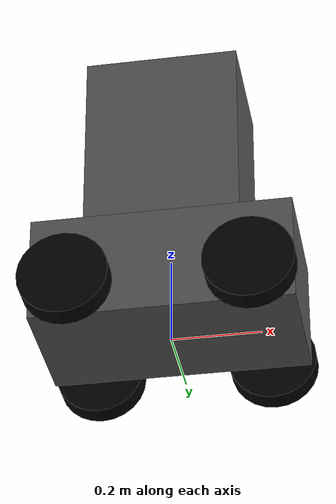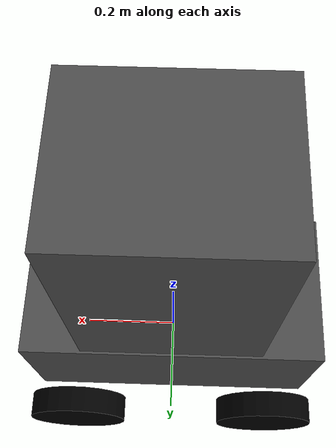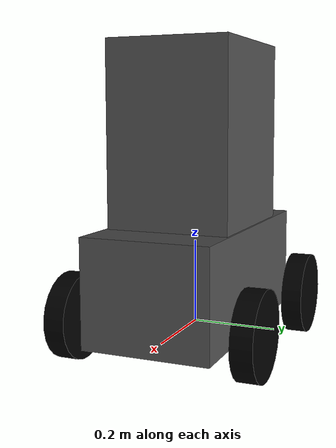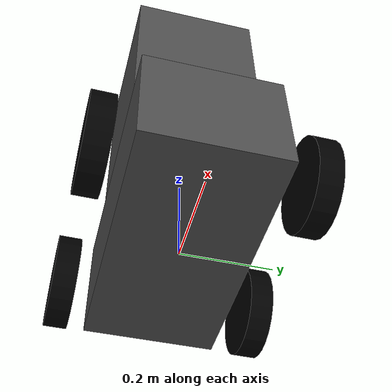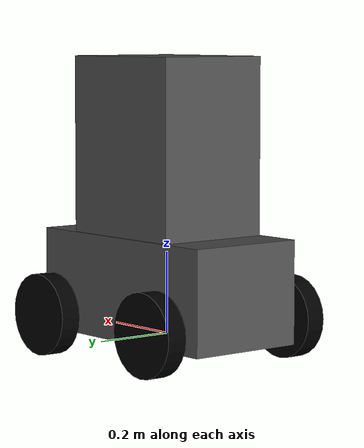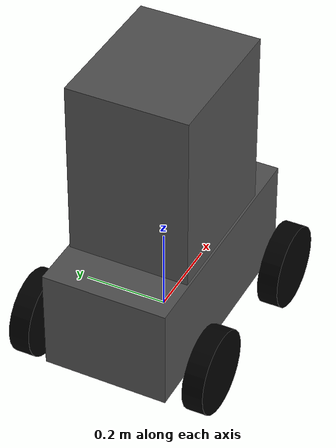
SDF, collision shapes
<sdf version='1.9'>
  <model name='ebot'>
    <link name='ebot_base_link'>
      <inertial>
        <pose>0 0 0.12 0 0 0</pose>
        <mass>46.033999999999999</mass>
        <inertia>
          <ixx>0.58501541666666657</ixx>
          <ixy>0</ixy>
          <ixz>0</ixz>
          <iyy>1.5525925541666661</iyy>
          <iyz>0</iyz>
          <izz>1.6580871374999999</izz>
        </inertia>
      </inertial>
      <collision name='ebot_base_link_fixed_joint_lump__ebot_base_collision'>
        <pose>0 0 0.12 0 0 0</pose>
        <geometry>
          <box>
            <size>0.585 0.3 0.25</size>
          </box>
        </geometry>
      </collision>
      <collision name='ebot_base_link_fixed_joint_lump__ebot_base_collision_1'>
        <pose>0 0 0.457521 0 0 0</pose>
        <geometry>
          <box>
            <size>0.35 0.29 0.435</size>
          </box>
        </geometry>
      </collision>
      <visual name='ebot_base_link_fixed_joint_lump__ebot_base_visual'>
        <pose>0 0 0 0 0 0</pose>
        <geometry>
          <mesh>
            <scale>1 1 1</scale>
            <uri>file:///home/joel/kc25_ws/dev-sim_ws/install/ebot_description/share/ebot_description/meshes/chassis_modified.dae</uri>
          </mesh>
        </geometry>
      </visual>
      <visual name='ebot_base_link_fixed_joint_lump__FUS1_visual_1'>
        <pose>0.297825909825268 -0.157279305693451 0.0977263808983278 -1.5707963267949 0 0.006797068273444629</pose>
        <geometry>
          <mesh>
            <scale>1 1 1</scale>
            <uri>file:///home/joel/kc25_ws/dev-sim_ws/install/ebot_description/share/ebot_description/meshes/FUS1.STL</uri>
          </mesh>
        </geometry>
        <material>
          <diffuse>0.313726 0.313726 0.313726 1</diffuse>
          <ambient>0.313726 0.313726 0.313726 1</ambient>
        </material>
      </visual>
      <visual name='ebot_base_link_fixed_joint_lump__FUS2_visual_2'>
        <pose>0.295786805044471 0.142713764312663 0.09772638089832859 -1.5707963267949 0 0.006797068273444629</pose>
        <geometry>
          <mesh>
            <scale>1 1 1</scale>
            <uri>file:///home/joel/kc25_ws/dev-sim_ws/install/ebot_description/share/ebot_description/meshes/FUS2.STL</uri>
          </mesh>
        </geometry>
        <material>
          <diffuse>0.313725 0.313725 0.313725 1</diffuse>
          <ambient>0.313725 0.313725 0.313725 1</ambient>
        </material>
      </visual>
      <visual name='ebot_base_link_fixed_joint_lump__FUS3_visual_3'>
        <pose>0.27274874909921 -0.0749478536996718 0.0424745013517897 0 0.7853981633974491 0.00679706827344116</pose>
        <geometry>
          <mesh>
            <scale>1 1 1</scale>
            <uri>file:///home/joel/kc25_ws/dev-sim_ws/install/ebot_description/share/ebot_description/meshes/FUS3.STL</uri>
          </mesh>
        </geometry>
        <material>
          <diffuse>0.313725 0.313725 0.313725 1</diffuse>
          <ambient>0.313725 0.313725 0.313725 1</ambient>
        </material>
      </visual>
      <visual name='ebot_base_link_fixed_joint_lump__FUS4_visual_4'>
        <pose>0.271702008645067 0.0790485889034664 0.0424745013517894 0 0.7853981633974491 0.00679706827344116</pose>
        <geometry>
          <mesh>
            <scale>1 1 1</scale>
            <uri>file:///home/joel/kc25_ws/dev-sim_ws/install/ebot_description/share/ebot_description/meshes/FUS4.STL</uri>
          </mesh>
        </geometry>
        <material>
          <diffuse>0.313726 0.313726 0.313726 1</diffuse>
          <ambient>0.313726 0.313726 0.313726 1</ambient>
        </material>
      </visual>
      <visual name='ebot_base_link_fixed_joint_lump__LHUS10_visual_5'>
        <pose>0.14045985551618 0.10004021562239 0.196076309026377 0.001868830766043012 0.123098458475999 0.7998493484503931</pose>
        <geometry>
          <mesh>
            <scale>1 1 1</scale>
            <uri>file:///home/joel/kc25_ws/dev-sim_ws/install/ebot_description/share/ebot_description/meshes/LHUS10.STL</uri>
          </mesh>
        </geometry>
        <material>
          <diffuse>0.313725 0.313725 0.313725 1</diffuse>
          <ambient>0.313725 0.313725 0.313725 1</ambient>
        </material>
      </visual>
      <visual name='ebot_base_link_fixed_joint_lump__LHUS9_visual_6'>
        <pose>-0.180600634182961 0.14597582665002 0.189449821416576 0 0 1.57759339506834</pose>
        <geometry>
          <mesh>
            <scale>1 1 1</scale>
            <uri>file:///home/joel/kc25_ws/dev-sim_ws/install/ebot_description/share/ebot_description/meshes/LHUS9.STL</uri>
          </mesh>
        </geometry>
        <material>
          <diffuse>0.313726 0.313726 0.313726 1</diffuse>
          <ambient>0.313726 0.313726 0.313726 1</ambient>
        </material>
      </visual>
      <visual name='ebot_base_link_fixed_joint_lump__RHUS7_visual_7'>
        <pose>-0.17860231149778 -0.148017381955971 0.189449821416576 0 0 -1.56399925852145</pose>
        <geometry>
          <mesh>
            <scale>1 1 1</scale>
            <uri>file:///home/joel/kc25_ws/dev-sim_ws/install/ebot_description/share/ebot_description/meshes/RHUS7.STL</uri>
          </mesh>
        </geometry>
        <material>
          <diffuse>0.313726 0.313726 0.313726 1</diffuse>
          <ambient>0.313726 0.313726 0.313726 1</ambient>
        </material>
      </visual>
      <visual name='ebot_base_link_fixed_joint_lump__RHUS9_visual_8'>
        <pose>0.141804076845343 -0.09772160961624141 0.196076309026378 -0.001868830766054911 0.123098458475999 -0.7862552119035011</pose>
        <geometry>
          <mesh>
            <scale>1 1 1</scale>
            <uri>file:///home/joel/kc25_ws/dev-sim_ws/install/ebot_description/share/ebot_description/meshes/RHUS9.STL</uri>
          </mesh>
        </geometry>
        <material>
          <diffuse>0.313725 0.313725 0.313725 1</diffuse>
          <ambient>0.313725 0.313725 0.313725 1</ambient>
        </material>
      </visual>
      <visual name='ebot_base_link_fixed_joint_lump__ultrasonic_rl_visual_9'>
        <pose>-0.29532868617037 0.157696288994793 0.09770294372515149 -1.5707963267949 0 -3.13479558531634</pose>
        <geometry>
          <mesh>
            <scale>1 1 1</scale>
            <uri>file:///home/joel/kc25_ws/dev-sim_ws/install/ebot_description/share/ebot_description/meshes/RUS5.STL</uri>
          </mesh>
        </geometry>
        <material>
          <diffuse>0.313725 0.313725 0.313725 1</diffuse>
          <ambient>0.313725 0.313725 0.313725 1</ambient>
        </material>
      </visual>
      <visual name='ebot_base_link_fixed_joint_lump__ultrasonic_rr_visual_10'>
        <pose>-0.293289581389573 -0.14229678101132 0.0977029437251508 -1.5707963267949 0 -3.13479558531634</pose>
        <geometry>
          <mesh>
            <scale>1 1 1</scale>
            <uri>file:///home/joel/kc25_ws/dev-sim_ws/install/ebot_description/share/ebot_description/meshes/RUS6.STL</uri>
          </mesh>
        </geometry>
        <material>
          <diffuse>0.313726 0.313726 0.313726 1</diffuse>
          <ambient>0.313726 0.313726 0.313726 1</ambient>
        </material>
      </visual>
      <visual name='ebot_base_link_fixed_joint_lump__imu_link_visual_11'>
        <pose>0 0 0.2 0 0 0</pose>
        <geometry>
          <box>
            <size>0.02 0.015 0.008</size>
          </box>
        </geometry>
      </visual>
      <visual name='ebot_base_link_fixed_joint_lump__laser_visual_12'>
        <pose>0.255540836099039 0 0.18 0 0 0.00679706827344463</pose>
        <geometry>
          <cylinder>
            <length>0.040000000000000001</length>
            <radius>0.029999999999999999</radius>
          </cylinder>
        </geometry>
      </visual>
    </link>
    <joint name='FWLJ' type='revolute'>
      <pose relative_to='ebot_base_link'>0.199948480594093 0.192163491981716 0.0450000000000047 0 0 0.00679706827344463</pose>
      <parent>ebot_base_link</parent>
      <child>FWL</child>
      <axis>
        <xyz>0 1 0</xyz>
        <limit>
          <lower>-10000000000000000</lower>
          <upper>10000000000000000</upper>
        </limit>
        <dynamics>
          <spring_reference>0</spring_reference>
          <spring_stiffness>0</spring_stiffness>
        </dynamics>
      </axis>
    </joint>
    <link name='FWL'>
      <pose relative_to='FWLJ'>0 0 0 0 0 0</pose>
      <inertial>
        <pose>6.659400000000001e-05 0.025016 -1.349e-06 0 0 0</pose>
        <mass>2.637</mass>
        <inertia>
          <ixx>0.0071418750000000024</ixx>
          <ixy>0</ixy>
          <ixz>0</ixz>
          <iyy>0.013185000000000001</iyy>
          <iyz>0</iyz>
          <izz>0.0071418750000000024</izz>
        </inertia>
      </inertial>
      <collision name='FWL_collision'>
        <pose>0 0.025 0 0 1.570796326794897 -1.570796326794897</pose>
        <geometry>
          <cylinder>
            <length>0.050000000000000003</length>
            <radius>0.10000000000000001</radius>
          </cylinder>
        </geometry>
      </collision>
      <visual name='FWL_visual'>
        <pose>0 0 0 0 0 0</pose>
        <geometry>
          <mesh>
            <scale>1 1 1</scale>
            <uri>file:///home/joel/kc25_ws/dev-sim_ws/install/ebot_description/share/ebot_description/meshes/FWL.STL</uri>
          </mesh>
        </geometry>
        <material>
          <diffuse>0 0 0 1</diffuse>
          <ambient>0 0 0 1</ambient>
        </material>
      </visual>
    </link>
    <joint name='FWRJ' type='revolute'>
      <pose relative_to='ebot_base_link'>0.202539503068943 -0.189027702306049 0.0449999999999943 -3.14159265358979 0.9110963622385631 0.006797068273438887</pose>
      <parent>ebot_base_link</parent>
      <child>FWR</child>
      <axis>
        <xyz>0 -1 0</xyz>
        <limit>
          <lower>-10000000000000000</lower>
          <upper>10000000000000000</upper>
        </limit>
        <dynamics>
          <spring_reference>0</spring_reference>
          <spring_stiffness>0</spring_stiffness>
        </dynamics>
      </axis>
    </joint>
    <link name='FWR'>
      <pose relative_to='FWRJ'>0 0 0 0 0 0</pose>
      <inertial>
        <pose>6.6592e-05 0.025016 -1.3483e-06 0 0 0</pose>
        <mass>2.637</mass>
        <inertia>
          <ixx>0.0071418750000000024</ixx>
          <ixy>0</ixy>
          <ixz>0</ixz>
          <iyy>0.013185000000000001</iyy>
          <iyz>0</iyz>
          <izz>0.0071418750000000024</izz>
        </inertia>
      </inertial>
      <collision name='FWR_collision'>
        <pose>0 0.025 0 0 1.570796326794897 -1.570796326794897</pose>
        <geometry>
          <cylinder>
            <length>0.050000000000000003</length>
            <radius>0.10000000000000001</radius>
          </cylinder>
        </geometry>
      </collision>
      <visual name='FWR_visual'>
        <pose>0 0 0 0 0 0</pose>
        <geometry>
          <mesh>
            <scale>1 1 1</scale>
            <uri>file:///home/joel/kc25_ws/dev-sim_ws/install/ebot_description/share/ebot_description/meshes/FWR.STL</uri>
          </mesh>
        </geometry>
        <material>
          <diffuse>0 0 0 1</diffuse>
          <ambient>0 0 0 1</ambient>
        </material>
      </visual>
    </link>
    <joint name='RWLJ' type='revolute'>
      <pose relative_to='ebot_base_link'>-0.200042279414009 0.189444685607321 0.0449999999999969 0 0 0.00679706827344463</pose>
      <parent>ebot_base_link</parent>
      <child>RWL</child>
      <axis>
        <xyz>0 1 0</xyz>
        <limit>
          <lower>-10000000000000000</lower>
          <upper>10000000000000000</upper>
        </limit>
        <dynamics>
          <spring_reference>0</spring_reference>
          <spring_stiffness>0</spring_stiffness>
        </dynamics>
      </axis>
    </joint>
    <link name='RWL'>
      <pose relative_to='RWLJ'>0 0 0 0 0 0</pose>
      <inertial>
        <pose>6.659400000000001e-05 0.025016 -1.349e-06 0 0 0</pose>
        <mass>2.637</mass>
        <inertia>
          <ixx>0.0071418750000000024</ixx>
          <ixy>0</ixy>
          <ixz>0</ixz>
          <iyy>0.013185000000000001</iyy>
          <iyz>0</iyz>
          <izz>0.0071418750000000024</izz>
        </inertia>
      </inertial>
      <collision name='RWL_collision'>
        <pose>0 0.025 0 0 1.570796326794897 -1.570796326794897</pose>
        <geometry>
          <cylinder>
            <length>0.050000000000000003</length>
            <radius>0.10000000000000001</radius>
          </cylinder>
        </geometry>
      </collision>
      <visual name='RWL_visual'>
        <pose>0 0 0 0 0 0</pose>
        <geometry>
          <mesh>
            <scale>1 1 1</scale>
            <uri>file:///home/joel/kc25_ws/dev-sim_ws/install/ebot_description/share/ebot_description/meshes/RWL.STL</uri>
          </mesh>
        </geometry>
        <material>
          <diffuse>0 0 0 1</diffuse>
          <ambient>0 0 0 1</ambient>
        </material>
      </visual>
    </link>
    <joint name='RWRJ' type='revolute'>
      <pose relative_to='ebot_base_link'>-0.197451256939211 -0.191746508680447 0.044999999999993 -3.14159265358979 0.5449120844099211 0.00679706827344312</pose>
      <parent>ebot_base_link</parent>
      <child>RWR</child>
      <axis>
        <xyz>0 -1 0</xyz>
        <limit>
          <lower>-10000000000000000</lower>
          <upper>10000000000000000</upper>
        </limit>
        <dynamics>
          <spring_reference>0</spring_reference>
          <spring_stiffness>0</spring_stiffness>
        </dynamics>
      </axis>
    </joint>
    <link name='RWR'>
      <pose relative_to='RWRJ'>0 0 0 0 0 0</pose>
      <inertial>
        <pose>6.6592e-05 0.025016 -1.3483e-06 0 0 0</pose>
        <mass>2.637</mass>
        <inertia>
          <ixx>0.0071418750000000024</ixx>
          <ixy>0</ixy>
          <ixz>0</ixz>
          <iyy>0.013185000000000001</iyy>
          <iyz>0</iyz>
          <izz>0.0071418750000000024</izz>
        </inertia>
      </inertial>
      <collision name='RWR_collision'>
        <pose>0 0.025 0 0 1.570796326794897 -1.570796326794897</pose>
        <geometry>
          <cylinder>
            <length>0.050000000000000003</length>
            <radius>0.10000000000000001</radius>
          </cylinder>
        </geometry>
      </collision>
      <visual name='RWR_visual'>
        <pose>0 0 0 0 0 0</pose>
        <geometry>
          <mesh>
            <scale>1 1 1</scale>
            <uri>file:///home/joel/kc25_ws/dev-sim_ws/install/ebot_description/share/ebot_description/meshes/RWR.STL</uri>
          </mesh>
        </geometry>
        <material>
          <diffuse>0 0 0 1</diffuse>
          <ambient>0 0 0 1</ambient>
        </material>
      </visual>
    </link>
    <frame name='base_footprint_joint' attached_to='ebot_base_link'>
      <pose>0 0 0 0 -0 0</pose>
    </frame>
    <frame name='base_footprint' attached_to='base_footprint_joint'/>
    <frame name='FUS1J' attached_to='ebot_base'>
      <pose>0.297826 -0.157279 0.097726 -1.5708 -0 0.006797</pose>
    </frame>
    <frame name='FUS1' attached_to='FUS1J'/>
    <frame name='FUS2J' attached_to='ebot_base'>
      <pose>0.295787 0.142714 0.097726 -1.5708 -0 0.006797</pose>
    </frame>
    <frame name='FUS2' attached_to='FUS2J'/>
    <frame name='FUS3J' attached_to='ebot_base'>
      <pose>0.272749 -0.074948 0.042475 0 0.785398 0.006797</pose>
    </frame>
    <frame name='FUS3' attached_to='FUS3J'/>
    <frame name='FUS4J' attached_to='ebot_base'>
      <pose>0.271702 0.079049 0.042475 0 0.785398 0.006797</pose>
    </frame>
    <frame name='FUS4' attached_to='FUS4J'/>
    <frame name='LHUS10J' attached_to='ebot_base'>
      <pose>0.14046 0.10004 0.196076 0.001869 0.123098 0.799849</pose>
    </frame>
    <frame name='LHUS10' attached_to='LHUS10J'/>
    <frame name='LHUS9J' attached_to='ebot_base'>
      <pose>-0.180601 0.145976 0.18945 0 -0 1.57759</pose>
    </frame>
    <frame name='LHUS9' attached_to='LHUS9J'/>
    <frame name='RHUS7J' attached_to='ebot_base'>
      <pose>-0.178602 -0.148017 0.18945 0 0 -1.564</pose>
    </frame>
    <frame name='RHUS7' attached_to='RHUS7J'/>
    <frame name='RHUS9J' attached_to='ebot_base'>
      <pose>0.141804 -0.097722 0.196076 -0.001869 0.123098 -0.786255</pose>
    </frame>
    <frame name='RHUS9' attached_to='RHUS9J'/>
    <frame name='RUS5J' attached_to='ebot_base'>
      <pose>-0.295329 0.157696 0.097703 -1.5708 -0 -3.1348</pose>
    </frame>
    <frame name='ultrasonic_rl' attached_to='RUS5J'/>
    <frame name='RUS6J' attached_to='ebot_base'>
      <pose>-0.29329 -0.142297 0.097703 -1.5708 -0 -3.1348</pose>
    </frame>
    <frame name='ultrasonic_rr' attached_to='RUS6J'/>
    <frame name='imujoint' attached_to='ebot_base'>
      <pose>0 0 0.2 0 -0 0</pose>
    </frame>
    <frame name='imu_link' attached_to='imujoint'/>
    <frame name='rplidar_joint' attached_to='ebot_base'>
      <pose>0.255541 0 0.18 0 -0 0.006797</pose>
    </frame>
    <frame name='laser' attached_to='rplidar_joint'/>
    <frame name='base_link_ebot_base_joint' attached_to='ebot_base_link'>
      <pose>0 0 0 0 -0 0</pose>
    </frame>
    <frame name='ebot_base' attached_to='base_link_ebot_base_joint'/>
  </model>
</sdf>
